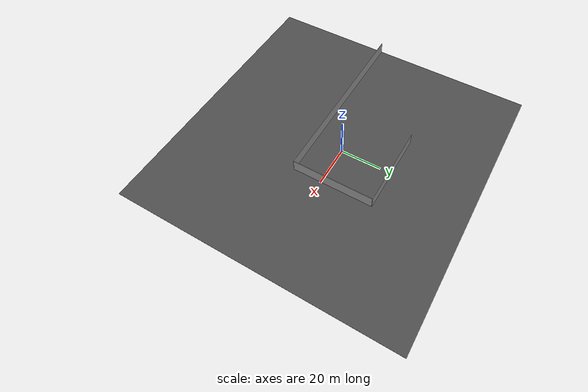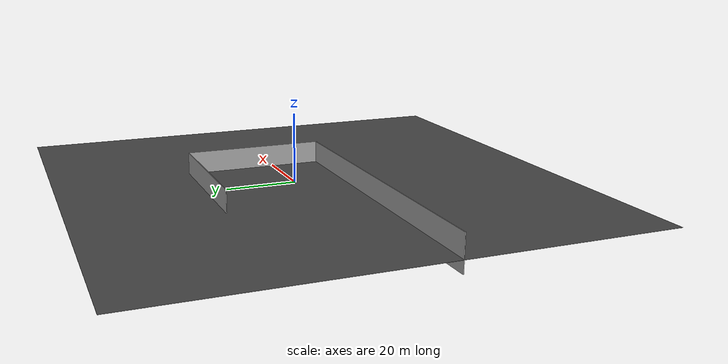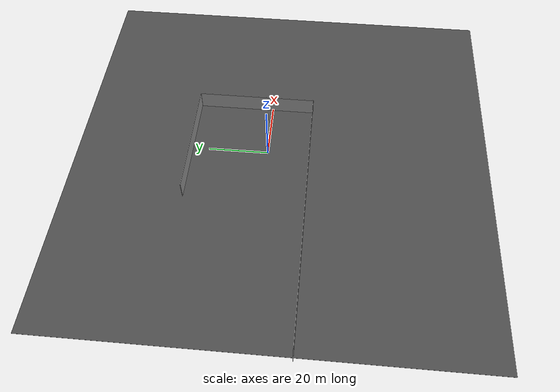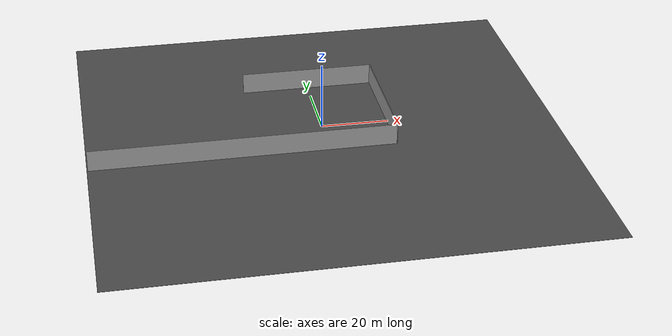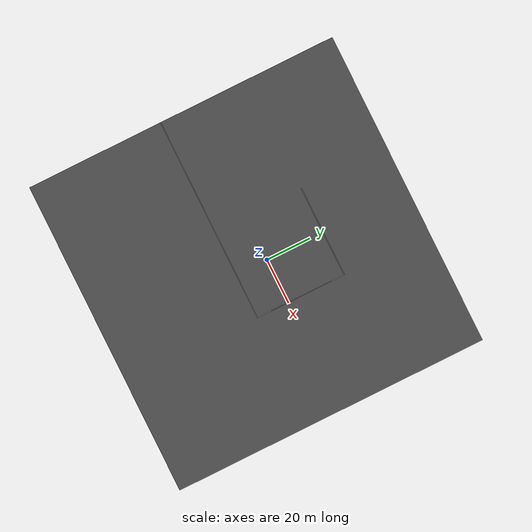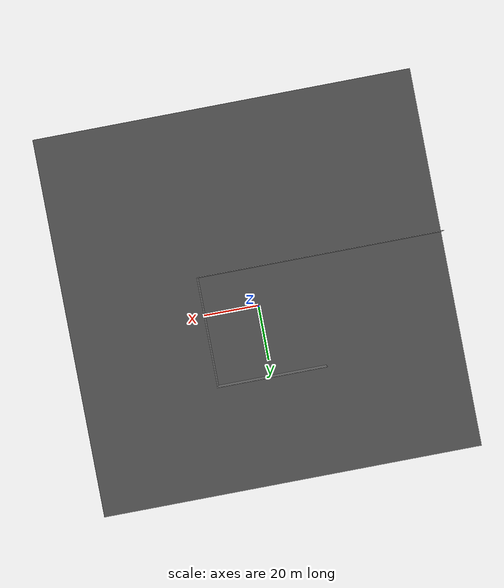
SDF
<sdf version="1.4">
 <world name="default">
  <light name="sun" type="directional">
   <pose>0 0 10 0 -0 0</pose>
   <diffuse>0.8 0.8 0.8 1</diffuse>
   <specular>0.2 0.2 0.2 1</specular>
   <attenuation>
    <range>1000</range>
    <constant>0.9</constant>
    <linear>0.01</linear>
    <quadratic>0.001</quadratic>
   </attenuation>
   <direction>-0.5 0.1 -0.9</direction>
  </light>
  <physics type="ode">
   <max_step_size>0.001</max_step_size>
   <real_time_factor>1</real_time_factor>
   <real_time_update_rate>1000</real_time_update_rate>
   <gravity>0 0 -9.8</gravity>
  </physics>
  <scene><ambient>0.4 0.4 0.4 1</ambient><background>0.7 0.7 0.7 1</background><shadows>1</shadows></scene>
  <model name="asphalt_plane">
   <static>1</static>
   <link name="link">
    <collision name="collision"><geometry><box><size>140 140 0.1</size></box></geometry></collision>
    <visual name="visual">
     <cast_shadows>0</cast_shadows>
     <geometry><box><size>140 140 0.1</size></box></geometry>
     <material>
      <script>
       <uri>model://asphalt_plane/materials/scripts</uri>
       <uri>model://asphalt_plane/materials/textures</uri>
       <name>vrc/asphalt</name>
      </script>
     </material>
    </visual>
    <velocity_decay><linear>0</linear><angular>0</angular></velocity_decay>
   </link>
   <pose>-0.43686 -4.75094 0 0 -0 0</pose>
  </model>
  <model name="grey_wall">
   <static>1</static>
   <link name="link">
    <pose>0 0 1.4 0 -0 0</pose>
    <collision name="collision"><geometry><box><size>7.5 0.2 2.8</size></box></geometry></collision>
    <visual name="visual">
     <cast_shadows>0</cast_shadows>
     <geometry><box><size>90 0.2 10</size></box></geometry>
     <material>
      <script>
       <uri>model://grey_wall/materials/scripts</uri>
       <uri>model://grey_wall/materials/textures</uri>
       <name>vrc/grey_wall</name>
      </script>
     </material>
    </visual>
    <velocity_decay><linear>0</linear><angular>0</angular></velocity_decay>
   </link>
   <pose>-25.1248 -14.1557 0 0 -0 0</pose>
  </model>
  <model name="grey_wall_0">
   <static>1</static>
   <link name="link">
    <pose>0 0 1.4 0 -0 0</pose>
    <collision name="collision"><geometry><box><size>0.2 0.2 2.8</size></box></geometry></collision>
    <visual name="visual">
     <cast_shadows>0</cast_shadows>
     <geometry><box><size>0.2 40 10</size></box></geometry>
     <material>
      <script>
       <uri>model://grey_wall/materials/scripts</uri>
       <uri>model://grey_wall/materials/textures</uri>
       <name>vrc/grey_wall</name>
      </script>
     </material>
    </visual>
    <velocity_decay><linear>0</linear><angular>0</angular></velocity_decay>
   </link>
   <pose>19.7577 5.64743 0 0 -0 0</pose>
  </model>
  <model name="grey_wall_1">
   <static>1</static>
   <link name="link">
    <pose>0 0 1.4 0 -0 0</pose>
    <collision name="collision"><geometry><box><size>7.5 0.2 2.8</size></box></geometry></collision>
    <visual name="visual">
     <cast_shadows>0</cast_shadows>
     <geometry><box><size>40 0.2 10</size></box></geometry>
     <material>
      <script>
       <uri>model://grey_wall/materials/scripts</uri>
       <uri>model://grey_wall/materials/textures</uri>
       <name>vrc/grey_wall</name>
      </script>
     </material>
    </visual>
    <velocity_decay><linear>0</linear><angular>0</angular></velocity_decay>
   </link>
   <pose>-0.18851 25.8222 0 0 -0 0</pose>
  </model>
 </world>
</sdf>
